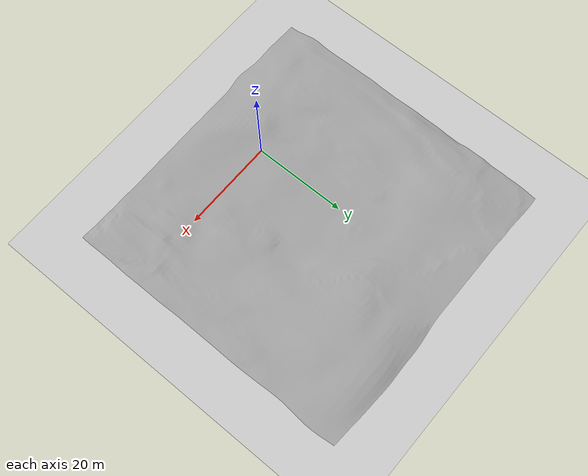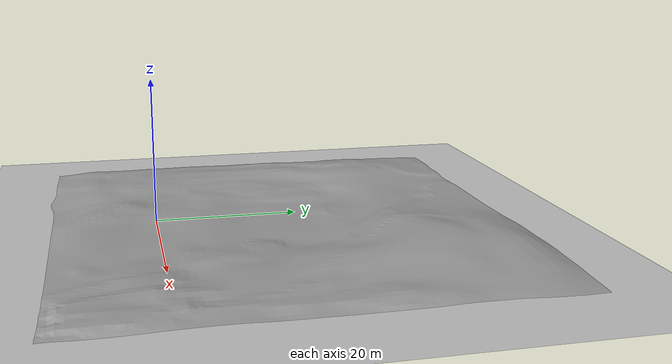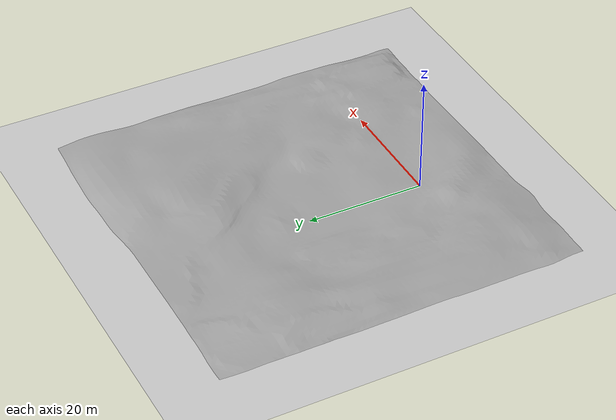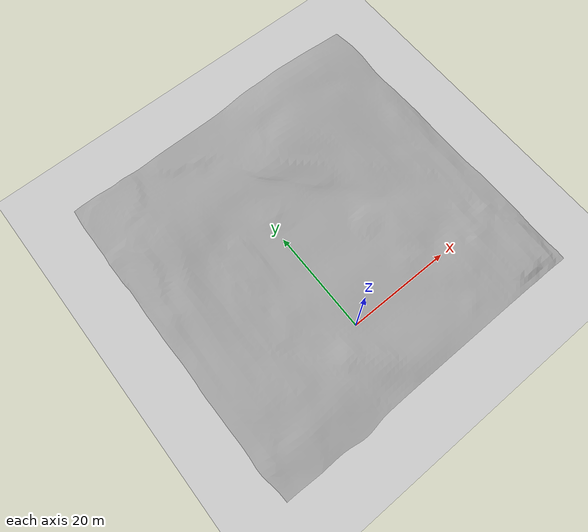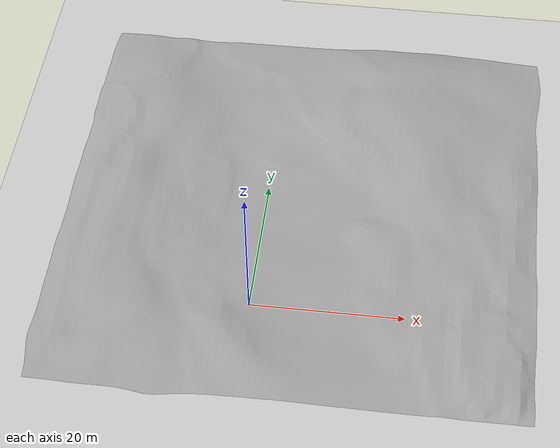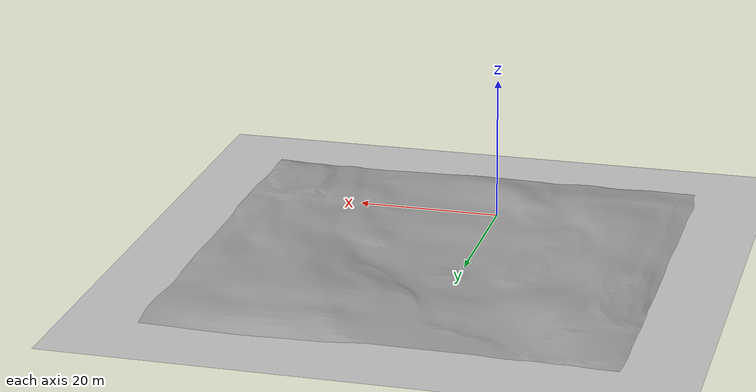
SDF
<?xml version="1.0" ?>
<sdf version="1.5">
  <world name="default">
    <!-- A global light source -->
    <include>
      <uri>model://sun</uri>
    </include>
    <include>
      <uri>model://ground_plane</uri>
	 		<pose>0.0 0.0 0.0 0 0 0</pose>
    </include>

    <include>
      <uri>model://snow_terrain</uri>
	 		<pose>5.0 17.0 0.0 0 0 0</pose>
			<static>true</static>
    </include>

		<physics name='default_physics' default='0' type='ode'>
      <gravity>0 0 -9.8066</gravity>
      <ode>
        <solver>
          <type>quick</type>
          <iters>10</iters>
          <sor>1.3</sor>
          <use_dynamic_moi_rescaling>0</use_dynamic_moi_rescaling>
        </solver>
        <constraints>
          <cfm>0</cfm>
          <erp>0.2</erp>
          <contact_max_correcting_vel>100</contact_max_correcting_vel>
          <contact_surface_layer>0.001</contact_surface_layer>
        </constraints>
      </ode>
      <max_step_size>0.002</max_step_size>
      <real_time_factor>1</real_time_factor>
      <real_time_update_rate>500</real_time_update_rate>
      <magnetic_field>6.0e-6 2.3e-5 -4.2e-5</magnetic_field>
    </physics>

  </world>

</sdf>

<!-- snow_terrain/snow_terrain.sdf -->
<sdf version="1.6">
  <model name="landscape">
    <link name="link">
      <collision name="collision">
        <geometry>
          <mesh>
            <uri>model://snow_terrain/meshes/SnowTerrain.dae</uri>
          </mesh>
        </geometry>
      </collision>
      <visual name="visual">
        <geometry>
          <mesh>
            <uri>model://snow_terrain/meshes/SnowTerrain.dae</uri>
          </mesh>
        </geometry>
      </visual>
    </link>
		<static>1</static>
    <allow_auto_disable>1</allow_auto_disable>
  </model>
</sdf>
